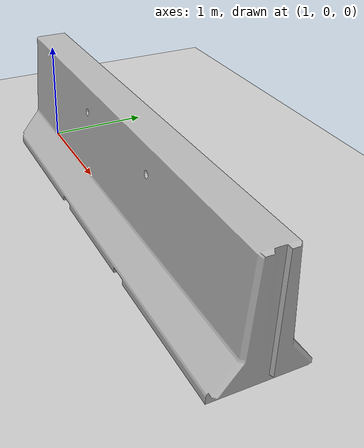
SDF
<?xml version="1.0" ?>
<sdf version="1.5">
  <world name="default">
    <plugin name='gz::sim::systems::Physics' filename='libgz-sim-physics-system.so'/>
    <plugin name='gz::sim::systems::UserCommands' filename='libgz-sim-user-commands-system.so'/>
    <plugin name='gz::sim::systems::SceneBroadcaster' filename='libgz-sim-scene-broadcaster-system.so'/>
    <plugin name='gz::sim::systems::Contact' filename='libgz-sim-contact-system.so'/>
    <plugin name='gz::sim::systems::Imu' filename='libgz-sim-imu-system.so'/>
    <plugin name='gz::sim::systems::AirPressure' filename='libgz-sim-air-pressure-system.so'/>
    <plugin name='gz::sim::systems::Sensors' filename='libgz-sim-sensors-system.so'>
      <render_engine>ogre2</render_engine>
    </plugin>

    <!-- A global light source -->
    <light type="directional" name="sun">
      <cast_shadows>true</cast_shadows>
      <pose>0 0 10 0 0 0</pose>
      <diffuse>0.8 0.8 0.8 1</diffuse>
      <specular>0.2 0.2 0.2 1</specular>
      <direction>-0.5 0.1 -0.9</direction>
    </light>
    <!-- A ground plane -->
    <model name="ground_plane">
      <static>true</static>
      <link name="link">
        <collision name="collision">
          <geometry><plane><normal>0 0 1</normal><size>100 100</size></plane></geometry>
        </collision>
        <visual name="visual">
          <geometry><plane><normal>0 0 1</normal><size>100 100</size></plane></geometry>
        </visual>
      </link>
    </model>
    <include>
      <uri>model://asphalt_plane</uri>
    </include>

    <!-- Only one ROS interface plugin is required per world, as any other plugin can connect a Gazebo
         topic to a ROS topic (or vise versa). -->

    <physics name='default_physics' default='0' type='ode'>
      <gravity>0 0 -9.8066</gravity>
      <ode>
        <solver>
          <type>quick</type>
          <iters>10</iters>
          <sor>1.3</sor>
          <use_dynamic_moi_rescaling>0</use_dynamic_moi_rescaling>
        </solver>
        <constraints>
          <cfm>0</cfm>
          <erp>0.2</erp>
          <contact_max_correcting_vel>100</contact_max_correcting_vel>
          <contact_surface_layer>0.001</contact_surface_layer>
        </constraints>
      </ode>
      <max_step_size>0.002</max_step_size>
      <real_time_factor>1</real_time_factor>
      <real_time_update_rate>500</real_time_update_rate>
      <magnetic_field>6e-06 2.3e-05 -4.2e-05</magnetic_field>
    </physics>

    <model name="jersey_barrier">
      <static>true</static>
      <pose>3 0 0 0 0 0</pose>
      <link name="link">
        <visual name="visual">
          <geometry>
            <mesh><uri>model://jersey_barrier/meshes/jersey_barrier.dae</uri></mesh>
          </geometry>
        </visual>
        <collision name="collision">
          <geometry>
            <mesh><uri>model://jersey_barrier/meshes/jersey_barrier.dae</uri></mesh>
          </geometry>
        </collision>
      </link>
    </model>

</world>
</sdf>
